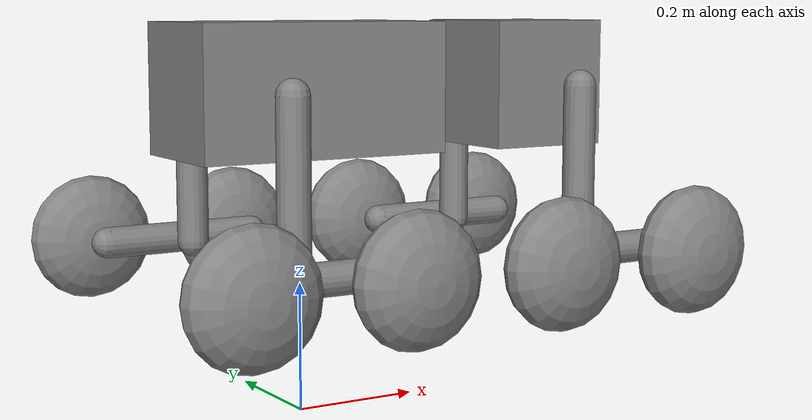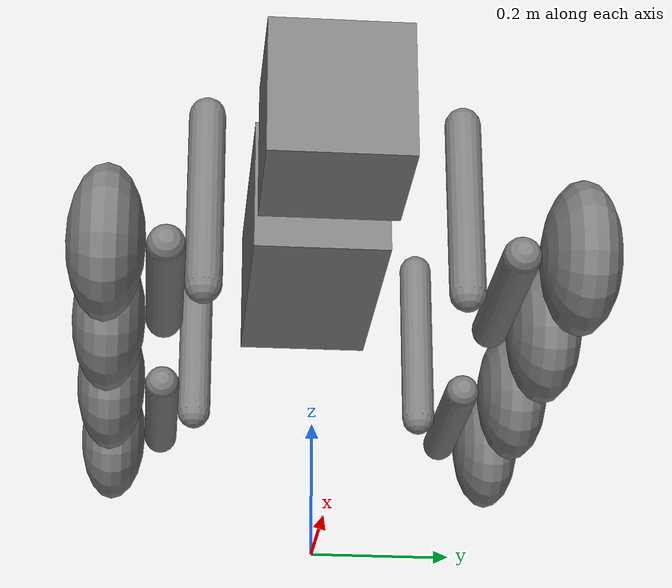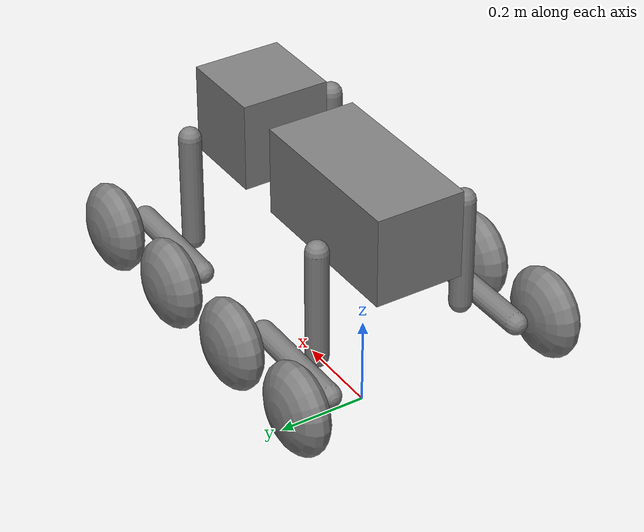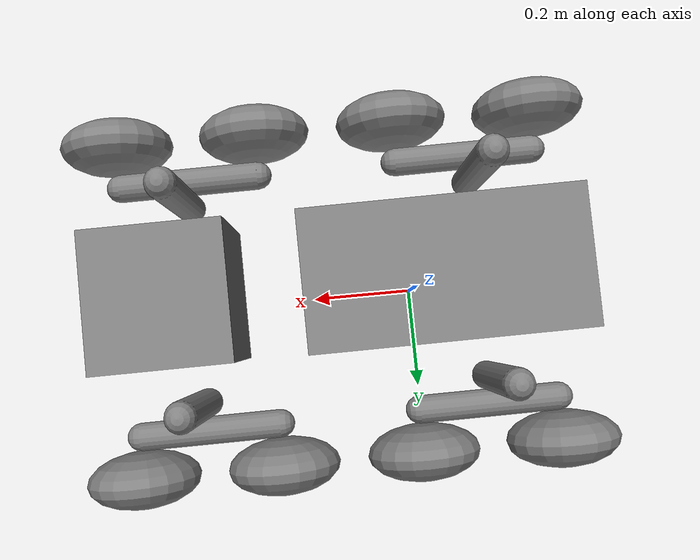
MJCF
<mujoco model="MuJoCo Model">
  <compiler angle="radian"/>

  <worldbody>
    <body name="torso" pos="0 0 0.5">
      <joint name="torso_joint" type="free" limited="false" actuatorfrclimited="false"/>
      <geom size="0.2 0.1 0.1" type="box" mass="36"/>
      <body name="torso_left_thigh" pos="-0.1 0.15 0">
        <joint name="torso_left_thigh_joint" pos="0 0 0" axis="0 1 0" armature="0.02" damping="2"/>
        <geom name="torso_left_thigh_geom" size="0.025 0.125" pos="0 0.025 -0.125" type="capsule" mass="3"/>
        <body name="torso_left_shin" pos="0 0.075 -0.25">
          <joint name="torso_left_thigh_shin_joint" pos="0 0 0" axis="0 1 0" armature="0.02" damping="2"/>
          <geom name="torso_left_shin_geom" size="0.025 0.125" quat="0.707107 0 0.707107 0" type="capsule" mass="2"/>
          <body name="torso_left_front_wheel" pos="0.125 0.075 0">
            <joint name="torso_left_shin_front_wheel_joint" pos="0 0 0" axis="0 1 0" armature="0.004" damping="2"/>
            <geom name="torso_left_front_wheel_geom" size="0.1 0.1 0.05" quat="0.707107 0.707107 0 0" type="ellipsoid" mass="2"/>
          </body>
          <body name="torso_left_rear_wheel" pos="-0.125 0.075 0">
            <joint name="torso_left_shin_rear_wheel_joint" pos="0 0 0" axis="0 1 0" armature="0.004" damping="2"/>
            <geom name="torso_left_rear_wheel_geom" size="0.1 0.1 0.05" quat="0.707107 0.707107 0 0" type="ellipsoid" mass="2"/>
          </body>
        </body>
      </body>
      <body name="torso_right_thigh" pos="-0.1 -0.15 0">
        <joint name="torso_right_thigh_joint" pos="0 0 0" axis="0 1 0" armature="0.02" damping="2"/>
        <geom name="torso_right_thigh_geom" size="0.025 0.125" pos="0 -0.025 -0.125" type="capsule" mass="3"/>
        <body name="torso_right_shin" pos="0 -0.075 -0.25">
          <joint name="torso_right_thigh_shin_joint" pos="0 0 0" axis="0 1 0" armature="0.02" damping="2"/>
          <geom name="torso_right_shin_geom" size="0.025 0.125" quat="0.707107 0 0.707107 0" type="capsule" mass="2"/>
          <body name="torso_right_front_wheel" pos="0.125 -0.075 0">
            <joint name="torso_right_shin_front_wheel_joint" pos="0 0 0" axis="0 1 0" armature="0.004" damping="2"/>
            <geom name="torso_right_front_wheel_geom" size="0.1 0.1 0.05" quat="0.707107 0.707107 0 0" type="ellipsoid" mass="2"/>
          </body>
          <body name="torso_right_rear_wheel" pos="-0.125 -0.075 0">
            <joint name="torso_right_shin_rear_wheel_joint" pos="0 0 0" axis="0 1 0" armature="0.004" damping="2"/>
            <geom name="torso_right_rear_wheel_geom" size="0.1 0.1 0.05" quat="0.707107 0.707107 0 0" type="ellipsoid" mass="2"/>
          </body>
        </body>
      </body>
      <body name="head" pos="0.4 0 0">
        <joint name="head_joint" pos="-0.1 0 0" axis="1 0 0" range="-0.436332 0.436332"/>
        <geom size="0.1 0.1 0.1" type="box" mass="15"/>
        <body name="head_left_thigh" pos="0 0.15 0">
          <joint name="head_left_thigh_joint" pos="0 0 0" axis="0 1 0" armature="0.02" damping="2"/>
          <geom name="head_left_thigh_geom" size="0.025 0.125" pos="0 0.025 -0.125" type="capsule" mass="3"/>
          <body name="head_left_shin" pos="0 0.075 -0.25">
            <joint name="head_left_thigh_shin_joint" pos="0 0 0" axis="0 1 0" armature="0.02" damping="2"/>
            <geom name="head_left_shin_geom" size="0.025 0.125" quat="0.707107 0 0.707107 0" type="capsule" mass="2"/>
            <body name="head_left_front_wheel" pos="0.125 0.075 0">
              <joint name="head_left_shin_front_wheel_joint" pos="0 0 0" axis="0 1 0" armature="0.004" damping="2"/>
              <geom name="head_left_front_wheel_geom" size="0.1 0.1 0.05" quat="0.707107 0.707107 0 0" type="ellipsoid" mass="2"/>
            </body>
            <body name="head_left_rear_wheel" pos="-0.125 0.075 0">
              <joint name="head_left_shin_rear_wheel_joint" pos="0 0 0" axis="0 1 0" armature="0.004" damping="2"/>
              <geom name="head_left_rear_wheel_geom" size="0.1 0.1 0.05" quat="0.707107 0.707107 0 0" type="ellipsoid" mass="2"/>
            </body>
          </body>
        </body>
        <body name="head_right_thigh" pos="0 -0.15 0">
          <joint name="head_right_thigh_joint" pos="0 0 0" axis="0 1 0" armature="0.02" damping="2"/>
          <geom name="head_right_thigh_geom" size="0.025 0.125" pos="0 -0.025 -0.125" type="capsule" mass="3"/>
          <body name="head_right_shin" pos="0 -0.075 -0.25">
            <joint name="head_right_thigh_shin_joint" pos="0 0 0" axis="0 1 0" armature="0.02" damping="2"/>
            <geom name="head_right_shin_geom" size="0.025 0.125" quat="0.707107 0 0.707107 0" type="capsule" mass="2"/>
            <body name="head_right_front_wheel" pos="0.125 -0.075 0">
              <joint name="head_right_shin_front_wheel_joint" pos="0 0 0" axis="0 1 0" armature="0.004" damping="2"/>
              <geom name="head_right_front_wheel_geom" size="0.1 0.1 0.05" quat="0.707107 0.707107 0 0" type="ellipsoid" mass="2"/>
            </body>
            <body name="head_right_rear_wheel" pos="-0.125 -0.075 0">
              <joint name="head_right_shin_rear_wheel_joint" pos="0 0 0" axis="0 1 0" armature="0.004" damping="2"/>
              <geom name="head_right_rear_wheel_geom" size="0.1 0.1 0.05" quat="0.707107 0.707107 0 0" type="ellipsoid" mass="2"/>
            </body>
          </body>
        </body>
      </body>
    </body>
  </worldbody>

  <actuator>
    <general name="bl_hip" joint="torso_left_thigh_joint"/>
    <general name="bl_knee" joint="torso_left_thigh_shin_joint"/>
    <general name="bl_wheel1_joint" joint="torso_left_shin_front_wheel_joint"/>
    <general name="bl_wheel2_joint" joint="torso_left_shin_rear_wheel_joint"/>
    <general name="br_hip" joint="torso_right_thigh_joint"/>
    <general name="br_knee" joint="torso_right_thigh_shin_joint"/>
    <general name="br_wheel1_joint" joint="torso_right_shin_front_wheel_joint"/>
    <general name="br_wheel2_joint" joint="torso_right_shin_rear_wheel_joint"/>
    <general name="fl_hip" joint="head_left_thigh_joint"/>
    <general name="fl_knee" joint="head_left_thigh_shin_joint"/>
    <general name="fl_wheel1_joint" joint="head_left_shin_front_wheel_joint"/>
    <general name="fl_wheel2_joint" joint="head_left_shin_rear_wheel_joint"/>
    <general name="fr_hip" joint="head_right_thigh_joint"/>
    <general name="fr_knee" joint="head_right_thigh_shin_joint"/>
    <general name="fr_wheel1_joint" joint="head_right_shin_front_wheel_joint"/>
    <general name="fr_wheel2_joint" joint="head_right_shin_rear_wheel_joint"/>
  </actuator>
</mujoco>
